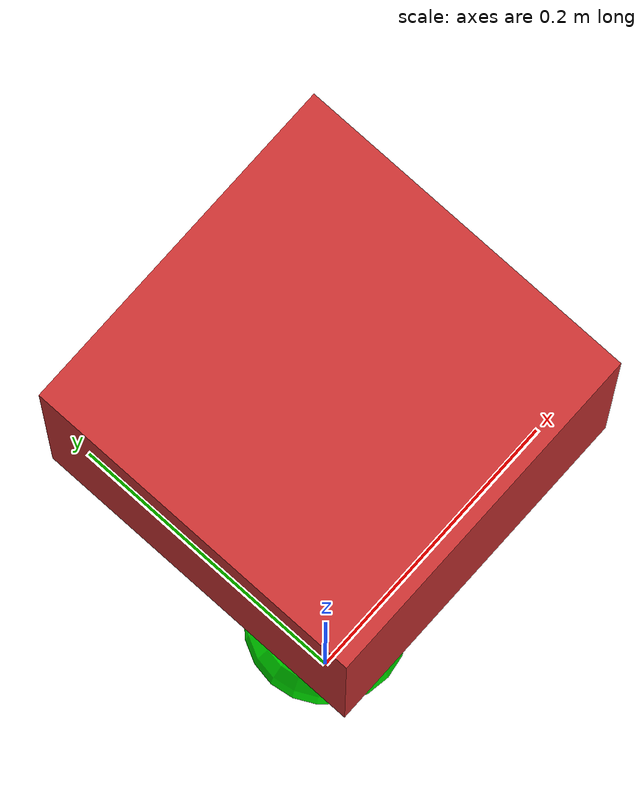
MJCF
<mujoco>
  <worldbody>
    <body name="falling_box" pos="0 0 1">
      <!-- Changed from freejoint to a slide joint moving only along the Z-axis -->
      <joint name="box_joint" type="slide" axis="0 0 1"/>
      <!-- Added a mass attribute so we know exactly how much gravity to fight -->
      <geom type="box" size="0.1 0.1 0.1" rgba="0.8 0.2 0.2 1" mass="1.0"/>
    </body>

    <site name="target" type="sphere" pos="0 0 0.2" size="0.05" rgba="0 1 0 1"/>
  </worldbody>

  <sensor>
    <framepos name="box_position" objtype="body" objname="falling_box"/>
  </sensor>

  <!-- NEW: The muscles of our robot -->
  <actuator>
    <!-- A direct-drive motor that applies linear force to our slide joint -->
    <motor name="box_motor" joint="box_joint"/>
  </actuator>
</mujoco>
